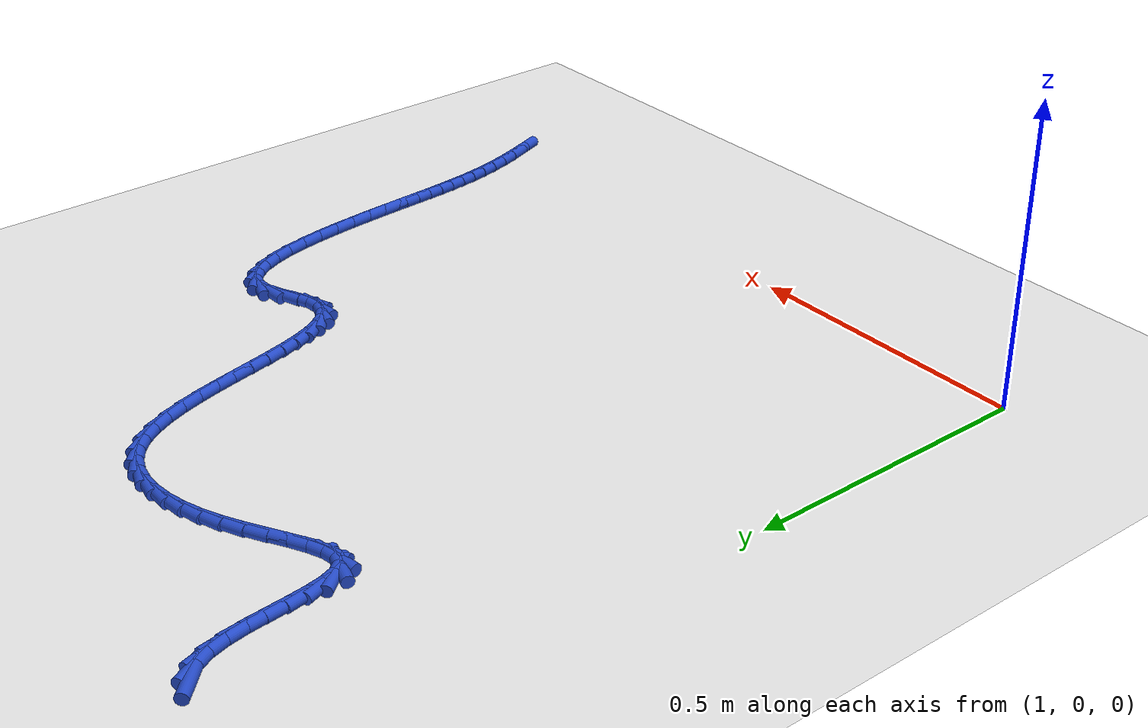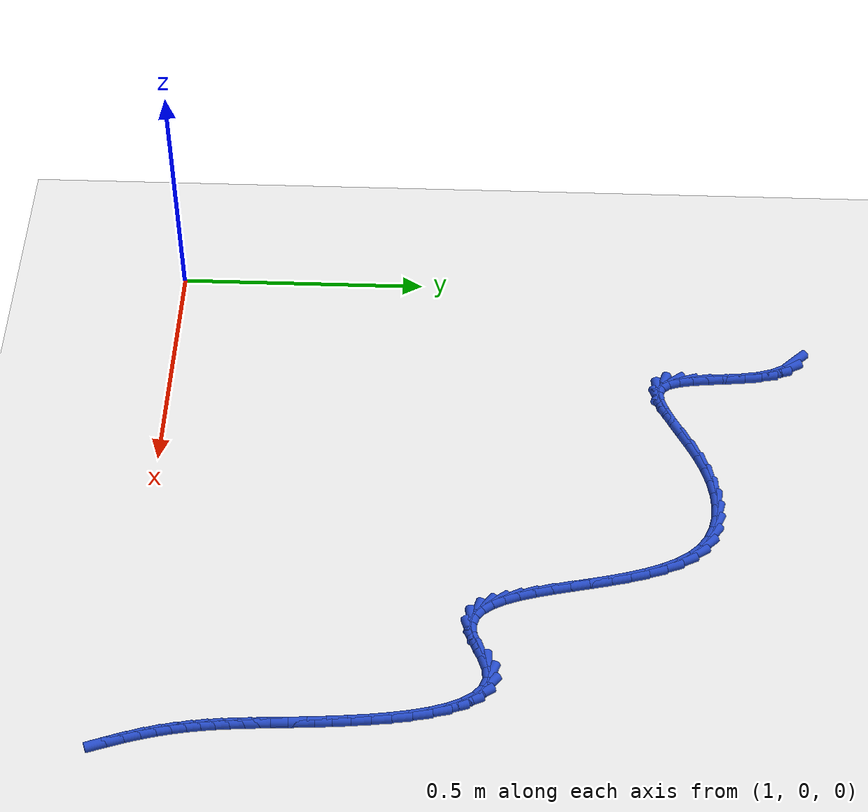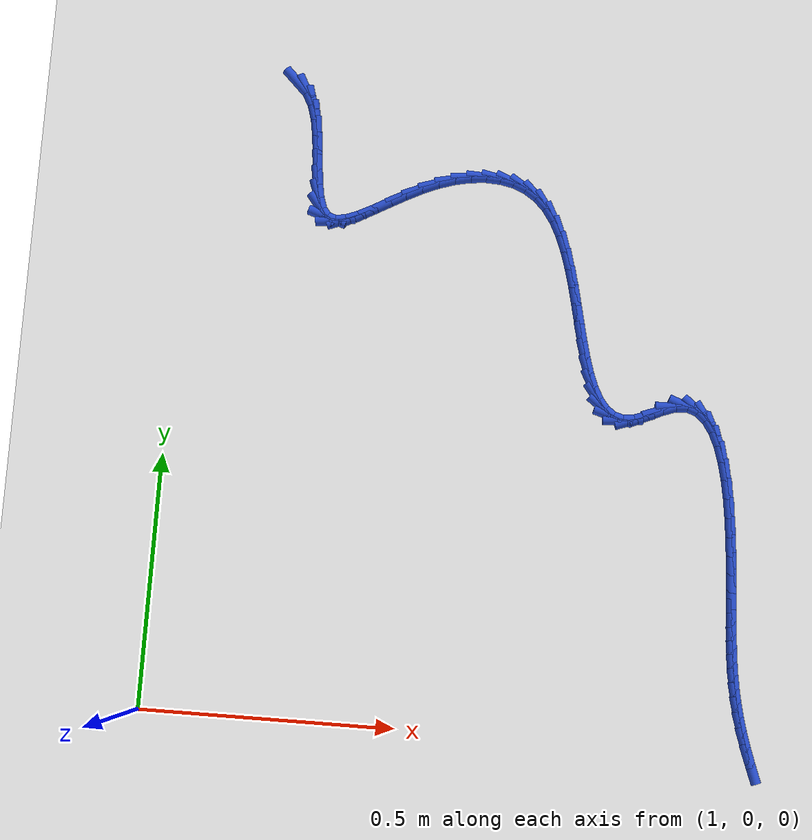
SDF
<sdf version="1.6">
 <world name="default">
  <model name="ground_plane">
   <static>1</static>
   <link name="link">
    <collision name="collision">
     <geometry><plane><normal>0 0 1</normal><size>100 100</size></plane></geometry>
     <surface><friction><ode><mu>100</mu><mu2>50</mu2></ode></friction></surface>
    </collision>
    <visual name="visual">
     <cast_shadows>0</cast_shadows>
     <geometry><plane><normal>0 0 1</normal><size>100 100</size></plane></geometry>
     <material>
      <script><uri>file://media/materials/scripts/gazebo.material</uri><name>Gazebo/WhiteGlow</name></script>
     </material>
    </visual>
   </link>
  </model>
  <model name="line">
   <link name="link_68">
    <pose>1.2058878404719158 1.265381717221211 0.01 0 1.57 -0.7793623105907405</pose>
    <collision name="collision">
     <geometry><cylinder><radius>0.01</radius><length>0.08</length></cylinder></geometry>
    </collision>
    <visual name="visual">
     <material>
      <script><name>Gazebo/Blue</name><uri>file://media/materials/scripts/gazebo.material</uri></script>
     </material>
     <geometry><cylinder><radius>0.01</radius><length>0.08</length></cylinder></geometry>
    </visual>
   </link>
   <link name="link_69">
    <pose>1.223359782249414 1.2481194286912047 0.01 0 1.57 -1.0833287653201922</pose>
    <collision name="collision">
     <geometry><cylinder><radius>0.01</radius><length>0.08</length></cylinder></geometry>
    </collision>
    <visual name="visual">
     <material>
      <script><name>Gazebo/Blue</name><uri>file://media/materials/scripts/gazebo.material</uri></script>
     </material>
     <geometry><cylinder><radius>0.01</radius><length>0.08</length></cylinder></geometry>
    </visual>
   </link>
   <link name="link_70">
    <pose>1.2360315128929988 1.2242167989494697 0.01 0 1.57 -1.2853422062372333</pose>
    <collision name="collision">
     <geometry><cylinder><radius>0.01</radius><length>0.08</length></cylinder></geometry>
    </collision>
    <visual name="visual">
     <material>
      <script><name>Gazebo/Blue</name><uri>file://media/materials/scripts/gazebo.material</uri></script>
     </material>
     <geometry><cylinder><radius>0.01</radius><length>0.08</length></cylinder></geometry>
    </visual>
   </link>
   <link name="link_71">
    <pose>1.244607285723089 1.194994701907489 0.01 0 1.57 -1.4007492171855416</pose>
    <collision name="collision">
     <geometry><cylinder><radius>0.01</radius><length>0.08</length></cylinder></geometry>
    </collision>
    <visual name="visual">
     <material>
      <script><name>Gazebo/Blue</name><uri>file://media/materials/scripts/gazebo.material</uri></script>
     </material>
     <geometry><cylinder><radius>0.01</radius><length>0.08</length></cylinder></geometry>
    </visual>
   </link>
   <link name="link_72">
    <pose>1.2502182650615765 1.162316743365079 0.01 0 1.57 -1.4610024508072048</pose>
    <collision name="collision">
     <geometry><cylinder><radius>0.01</radius><length>0.08</length></cylinder></geometry>
    </collision>
    <visual name="visual">
     <material>
      <script><name>Gazebo/Blue</name><uri>file://media/materials/scripts/gazebo.material</uri></script>
     </material>
     <geometry><cylinder><radius>0.01</radius><length>0.08</length></cylinder></geometry>
    </visual>
   </link>
   <link name="link_73">
    <pose>1.2539960555104162 1.1280470888500291 0.01 0 1.57 -1.480557919991473</pose>
    <collision name="collision">
     <geometry><cylinder><radius>0.01</radius><length>0.08</length></cylinder></geometry>
    </collision>
    <visual name="visual">
     <material>
      <script><name>Gazebo/Blue</name><uri>file://media/materials/scripts/gazebo.material</uri></script>
     </material>
     <geometry><cylinder><radius>0.01</radius><length>0.08</length></cylinder></geometry>
    </visual>
   </link>
   <link name="link_74">
    <pose>1.2570722616715635 1.0940499038901312 0.01 0 1.57 -1.4611882365544484</pose>
    <collision name="collision">
     <geometry><cylinder><radius>0.01</radius><length>0.08</length></cylinder></geometry>
    </collision>
    <visual name="visual">
     <material>
      <script><name>Gazebo/Blue</name><uri>file://media/materials/scripts/gazebo.material</uri></script>
     </material>
     <geometry><cylinder><radius>0.01</radius><length>0.08</length></cylinder></geometry>
    </visual>
   </link>
   <link name="link_75">
    <pose>1.260578488146973 1.0621893540131744 0.01 0 1.57 -1.3908579647973993</pose>
    <collision name="collision">
     <geometry><cylinder><radius>0.01</radius><length>0.08</length></cylinder></geometry>
    </collision>
    <visual name="visual">
     <material>
      <script><name>Gazebo/Blue</name><uri>file://media/materials/scripts/gazebo.material</uri></script>
     </material>
     <geometry><cylinder><radius>0.01</radius><length>0.08</length></cylinder></geometry>
    </visual>
   </link>
   <link name="link_76">
    <pose>1.2656463395386 1.0343296047469495 0.01 0 1.57 -1.2315758286325444</pose>
    <collision name="collision">
     <geometry><cylinder><radius>0.01</radius><length>0.08</length></cylinder></geometry>
    </collision>
    <visual name="visual">
     <material>
      <script><name>Gazebo/Blue</name><uri>file://media/materials/scripts/gazebo.material</uri></script>
     </material>
     <geometry><cylinder><radius>0.01</radius><length>0.08</length></cylinder></geometry>
    </visual>
   </link>
   <link name="link_77">
    <pose>1.2734074204483994 1.0123348216192463 0.01 0 1.57 -0.8886878355725425</pose>
    <collision name="collision">
     <geometry><cylinder><radius>0.01</radius><length>0.08</length></cylinder></geometry>
    </collision>
    <visual name="visual">
     <material>
      <script><name>Gazebo/Blue</name><uri>file://media/materials/scripts/gazebo.material</uri></script>
     </material>
     <geometry><cylinder><radius>0.01</radius><length>0.08</length></cylinder></geometry>
    </visual>
   </link>
   <link name="link_78">
    <pose>1.2849933354783265 0.9980691701578549 0.01 0 1.57 -0.30560761072414755</pose>
    <collision name="collision">
     <geometry><cylinder><radius>0.01</radius><length>0.08</length></cylinder></geometry>
    </collision>
    <visual name="visual">
     <material>
      <script><name>Gazebo/Blue</name><uri>file://media/materials/scripts/gazebo.material</uri></script>
     </material>
     <geometry><cylinder><radius>0.01</radius><length>0.08</length></cylinder></geometry>
    </visual>
   </link>
   <link name="link_79">
    <pose>1.3013005140783682 0.9929243990145776 0.01 0 1.57 0.14129225557697167</pose>
    <collision name="collision">
     <geometry><cylinder><radius>0.01</radius><length>0.08</length></cylinder></geometry>
    </collision>
    <visual name="visual">
     <material>
      <script><name>Gazebo/Blue</name><uri>file://media/materials/scripts/gazebo.material</uri></script>
     </material>
     <geometry><cylinder><radius>0.01</radius><length>0.08</length></cylinder></geometry>
    </visual>
   </link>
   <link name="link_80">
    <pose>1.3220203463864535 0.9958715890857948 0.01 0 1.57 0.36136505471235036</pose>
    <collision name="collision">
     <geometry><cylinder><radius>0.01</radius><length>0.08</length></cylinder></geometry>
    </collision>
    <visual name="visual">
     <material>
      <script><name>Gazebo/Blue</name><uri>file://media/materials/scripts/gazebo.material</uri></script>
     </material>
     <geometry><cylinder><radius>0.01</radius><length>0.08</length></cylinder></geometry>
    </visual>
   </link>
   <link name="link_81">
    <pose>1.3464592961907156 1.005108586076436 0.01 0 1.57 0.4634183077408714</pose>
    <collision name="collision">
     <geometry><cylinder><radius>0.01</radius><length>0.08</length></cylinder></geometry>
    </collision>
    <visual name="visual">
     <material>
      <script><name>Gazebo/Blue</name><uri>file://media/materials/scripts/gazebo.material</uri></script>
     </material>
     <geometry><cylinder><radius>0.01</radius><length>0.08</length></cylinder></geometry>
    </visual>
   </link>
   <link name="link_82">
    <pose>1.3739236581471606 1.0188328959409487 0.01 0 1.57 0.5033916465951123</pose>
    <collision name="collision">
     <geometry><cylinder><radius>0.01</radius><length>0.08</length></cylinder></geometry>
    </collision>
    <visual name="visual">
     <material>
      <script><name>Gazebo/Blue</name><uri>file://media/materials/scripts/gazebo.material</uri></script>
     </material>
     <geometry><cylinder><radius>0.01</radius><length>0.08</length></cylinder></geometry>
    </visual>
   </link>
   <link name="link_83">
    <pose>1.4037197269117927 1.0352420246337795 0.01 0 1.57 0.5029095167413982</pose>
    <collision name="collision">
     <geometry><cylinder><radius>0.01</radius><length>0.08</length></cylinder></geometry>
    </collision>
    <visual name="visual">
     <material>
      <script><name>Gazebo/Blue</name><uri>file://media/materials/scripts/gazebo.material</uri></script>
     </material>
     <geometry><cylinder><radius>0.01</radius><length>0.08</length></cylinder></geometry>
    </visual>
   </link>
   <link name="link_84">
    <pose>1.4351537971406174 1.0525334781093758 0.01 0 1.57 0.46813680575286054</pose>
    <collision name="collision">
     <geometry><cylinder><radius>0.01</radius><length>0.08</length></cylinder></geometry>
    </collision>
    <visual name="visual">
     <material>
      <script><name>Gazebo/Blue</name><uri>file://media/materials/scripts/gazebo.material</uri></script>
     </material>
     <geometry><cylinder><radius>0.01</radius><length>0.08</length></cylinder></geometry>
    </visual>
   </link>
   <link name="link_85">
    <pose>1.4675321634896403 1.0689047623221846 0.01 0 1.57 0.398167540373632</pose>
    <collision name="collision">
     <geometry><cylinder><radius>0.01</radius><length>0.08</length></cylinder></geometry>
    </collision>
    <visual name="visual">
     <material>
      <script><name>Gazebo/Blue</name><uri>file://media/materials/scripts/gazebo.material</uri></script>
     </material>
     <geometry><cylinder><radius>0.01</radius><length>0.08</length></cylinder></geometry>
    </visual>
   </link>
   <link name="link_86">
    <pose>1.5001773641621403 1.082636472037022 0.01 0 1.57 0.3073950592527104</pose>
    <collision name="collision">
     <geometry><cylinder><radius>0.01</radius><length>0.08</length></cylinder></geometry>
    </collision>
    <visual name="visual">
     <material>
      <script><name>Gazebo/Blue</name><uri>file://media/materials/scripts/gazebo.material</uri></script>
     </material>
     <geometry><cylinder><radius>0.01</radius><length>0.08</length></cylinder></geometry>
    </visual>
   </link>
   <link name="link_87">
    <pose>1.532591268422351 1.0929265142453009 0.01 0 1.57 0.20514461919029017</pose>
    <collision name="collision">
     <geometry><cylinder><radius>0.01</radius><length>0.08</length></cylinder></geometry>
    </collision>
    <visual name="visual">
     <material>
      <script><name>Gazebo/Blue</name><uri>file://media/materials/scripts/gazebo.material</uri></script>
     </material>
     <geometry><cylinder><radius>0.01</radius><length>0.08</length></cylinder></geometry>
    </visual>
   </link>
   <link name="link_88">
    <pose>1.564387086081446 1.0995423238522244 0.01 0 1.57 0.08802529563588592</pose>
    <collision name="collision">
     <geometry><cylinder><radius>0.01</radius><length>0.08</length></cylinder></geometry>
    </collision>
    <visual name="visual">
     <material>
      <script><name>Gazebo/Blue</name><uri>file://media/materials/scripts/gazebo.material</uri></script>
     </material>
     <geometry><cylinder><radius>0.01</radius><length>0.08</length></cylinder></geometry>
    </visual>
   </link>
   <link name="link_89">
    <pose>1.5951796963471783 1.1022598750415962 0.01 0 1.57 -0.04773678347120187</pose>
    <collision name="collision">
     <geometry><cylinder><radius>0.01</radius><length>0.08</length></cylinder></geometry>
    </collision>
    <visual name="visual">
     <material>
      <script><name>Gazebo/Blue</name><uri>file://media/materials/scripts/gazebo.material</uri></script>
     </material>
     <geometry><cylinder><radius>0.01</radius><length>0.08</length></cylinder></geometry>
    </visual>
   </link>
   <link name="link_90">
    <pose>1.6245839784272986 1.1008551419972192 0.01 0 1.57 -0.20520875508072675</pose>
    <collision name="collision">
     <geometry><cylinder><radius>0.01</radius><length>0.08</length></cylinder></geometry>
    </collision>
    <visual name="visual">
     <material>
      <script><name>Gazebo/Blue</name><uri>file://media/materials/scripts/gazebo.material</uri></script>
     </material>
     <geometry><cylinder><radius>0.01</radius><length>0.08</length></cylinder></geometry>
    </visual>
   </link>
   <link name="link_91">
    <pose>1.6522148115295578 1.0951040989028966 0.01 0 1.57 -0.3849816844161137</pose>
    <collision name="collision">
     <geometry><cylinder><radius>0.01</radius><length>0.08</length></cylinder></geometry>
    </collision>
    <visual name="visual">
     <material>
      <script><name>Gazebo/Blue</name><uri>file://media/materials/scripts/gazebo.material</uri></script>
     </material>
     <geometry><cylinder><radius>0.01</radius><length>0.08</length></cylinder></geometry>
    </visual>
   </link>
   <link name="link_92">
    <pose>1.6776870748617079 1.084782719942433 0.01 0 1.57 -0.5828528002260427</pose>
    <collision name="collision">
     <geometry><cylinder><radius>0.01</radius><length>0.08</length></cylinder></geometry>
    </collision>
    <visual name="visual">
     <material>
      <script><name>Gazebo/Blue</name><uri>file://media/materials/scripts/gazebo.material</uri></script>
     </material>
     <geometry><cylinder><radius>0.01</radius><length>0.08</length></cylinder></geometry>
    </visual>
   </link>
   <link name="link_93">
    <pose>1.7006156476315 1.06966697929963 0.01 0 1.57 -0.7878535014354022</pose>
    <collision name="collision">
     <geometry><cylinder><radius>0.01</radius><length>0.08</length></cylinder></geometry>
    </collision>
    <visual name="visual">
     <material>
      <script><name>Gazebo/Blue</name><uri>file://media/materials/scripts/gazebo.material</uri></script>
     </material>
     <geometry><cylinder><radius>0.01</radius><length>0.08</length></cylinder></geometry>
    </visual>
   </link>
   <link name="link_94">
    <pose>1.7206309627832832 1.049553133294022 0.01 0 1.57 -0.9673750986025735</pose>
    <collision name="collision">
     <geometry><cylinder><radius>0.01</radius><length>0.08</length></cylinder></geometry>
    </collision>
    <visual name="visual">
     <material>
      <script><name>Gazebo/Blue</name><uri>file://media/materials/scripts/gazebo.material</uri></script>
     </material>
     <geometry><cylinder><radius>0.01</radius><length>0.08</length></cylinder></geometry>
    </visual>
   </link>
   <link name="link_95">
    <pose>1.7377396908316418 1.0247280535656307 0.01 0 1.57 -1.1009587792342939</pose>
    <collision name="collision">
     <geometry><cylinder><radius>0.01</radius><length>0.08</length></cylinder></geometry>
    </collision>
    <visual name="visual">
     <material>
      <script><name>Gazebo/Blue</name><uri>file://media/materials/scripts/gazebo.material</uri></script>
     </material>
     <geometry><cylinder><radius>0.01</radius><length>0.08</length></cylinder></geometry>
    </visual>
   </link>
   <link name="link_96">
    <pose>1.7523353149593413 0.995983017045672 0.01 0 1.57 -1.1969821155979956</pose>
    <collision name="collision">
     <geometry><cylinder><radius>0.01</radius><length>0.08</length></cylinder></geometry>
    </collision>
    <visual name="visual">
     <material>
      <script><name>Gazebo/Blue</name><uri>file://media/materials/scripts/gazebo.material</uri></script>
     </material>
     <geometry><cylinder><radius>0.01</radius><length>0.08</length></cylinder></geometry>
    </visual>
   </link>
   <link name="link_97">
    <pose>1.7648289876148062 0.9641323414595794 0.01 0 1.57 -1.2643531823271805</pose>
    <collision name="collision">
     <geometry><cylinder><radius>0.01</radius><length>0.08</length></cylinder></geometry>
    </collision>
    <visual name="visual">
     <material>
      <script><name>Gazebo/Blue</name><uri>file://media/materials/scripts/gazebo.material</uri></script>
     </material>
     <geometry><cylinder><radius>0.01</radius><length>0.08</length></cylinder></geometry>
    </visual>
   </link>
   <link name="link_98">
    <pose>1.7756318612464603 0.9299903445327861 0.01 0 1.57 -1.3095433096258688</pose>
    <collision name="collision">
     <geometry><cylinder><radius>0.01</radius><length>0.08</length></cylinder></geometry>
    </collision>
    <visual name="visual">
     <material>
      <script><name>Gazebo/Blue</name><uri>file://media/materials/scripts/gazebo.material</uri></script>
     </material>
     <geometry><cylinder><radius>0.01</radius><length>0.08</length></cylinder></geometry>
    </visual>
   </link>
   <link name="link_99">
    <pose>1.785155088302726 0.8943713439907248 0.01 0 1.57 -1.3366296934176665</pose>
    <collision name="collision">
     <geometry><cylinder><radius>0.01</radius><length>0.08</length></cylinder></geometry>
    </collision>
    <visual name="visual">
     <material>
      <script><name>Gazebo/Blue</name><uri>file://media/materials/scripts/gazebo.material</uri></script>
     </material>
     <geometry><cylinder><radius>0.01</radius><length>0.08</length></cylinder></geometry>
    </visual>
   </link>
   <link name="link_100">
    <pose>1.7938098212320281 0.8580896575588289 0.01 0 1.57 -1.347687813384203</pose>
    <collision name="collision">
     <geometry><cylinder><radius>0.01</radius><length>0.08</length></cylinder></geometry>
    </collision>
    <visual name="visual">
     <material>
      <script><name>Gazebo/Blue</name><uri>file://media/materials/scripts/gazebo.material</uri></script>
     </material>
     <geometry><cylinder><radius>0.01</radius><length>0.08</length></cylinder></geometry>
    </visual>
   </link>
   <link name="link_101">
    <pose>1.8020072124827902 0.8219596029625328 0.01 0 1.57 -1.3430146635109652</pose>
    <collision name="collision">
     <geometry><cylinder><radius>0.01</radius><length>0.08</length></cylinder></geometry>
    </collision>
    <visual name="visual">
     <material>
      <script><name>Gazebo/Blue</name><uri>file://media/materials/scripts/gazebo.material</uri></script>
     </material>
     <geometry><cylinder><radius>0.01</radius><length>0.08</length></cylinder></geometry>
    </visual>
   </link>
   <link name="link_102">
    <pose>1.8101584145034353 0.7867954979272693 0.01 0 1.57 -1.321024909517263</pose>
    <collision name="collision">
     <geometry><cylinder><radius>0.01</radius><length>0.08</length></cylinder></geometry>
    </collision>
    <visual name="visual">
     <material>
      <script><name>Gazebo/Blue</name><uri>file://media/materials/scripts/gazebo.material</uri></script>
     </material>
     <geometry><cylinder><radius>0.01</radius><length>0.08</length></cylinder></geometry>
    </visual>
   </link>
   <link name="link_103">
    <pose>1.8186745797423873 0.7534116601784715 0.01 0 1.57 -1.2776864621147028</pose>
    <collision name="collision">
     <geometry><cylinder><radius>0.01</radius><length>0.08</length></cylinder></geometry>
    </collision>
    <visual name="visual">
     <material>
      <script><name>Gazebo/Blue</name><uri>file://media/materials/scripts/gazebo.material</uri></script>
     </material>
     <geometry><cylinder><radius>0.01</radius><length>0.08</length></cylinder></geometry>
    </visual>
   </link>
   <link name="link_104">
    <pose>1.82796686064807 0.7226224074415724 0.01 0 1.57 -1.2052574255813164</pose>
    <collision name="collision">
     <geometry><cylinder><radius>0.01</radius><length>0.08</length></cylinder></geometry>
    </collision>
    <visual name="visual">
     <material>
      <script><name>Gazebo/Blue</name><uri>file://media/materials/scripts/gazebo.material</uri></script>
     </material>
     <geometry><cylinder><radius>0.01</radius><length>0.08</length></cylinder></geometry>
    </visual>
   </link>
   <link name="link_105">
    <pose>1.8384464096689066 0.6952420574420062 0.01 0 1.57 -1.0900452048934428</pose>
    <collision name="collision">
     <geometry><cylinder><radius>0.01</radius><length>0.08</length></cylinder></geometry>
    </collision>
    <visual name="visual">
     <material>
      <script><name>Gazebo/Blue</name><uri>file://media/materials/scripts/gazebo.material</uri></script>
     </material>
     <geometry><cylinder><radius>0.01</radius><length>0.08</length></cylinder></geometry>
    </visual>
   </link>
   <link name="link_106">
    <pose>1.8505243792533206 0.6720849279052059 0.01 0 1.57 -0.9099413815578856</pose>
    <collision name="collision">
     <geometry><cylinder><radius>0.01</radius><length>0.08</length></cylinder></geometry>
    </collision>
    <visual name="visual">
     <material>
      <script><name>Gazebo/Blue</name><uri>file://media/materials/scripts/gazebo.material</uri></script>
     </material>
     <geometry><cylinder><radius>0.01</radius><length>0.08</length></cylinder></geometry>
    </visual>
   </link>
   <link name="link_107">
    <pose>1.8646119218497363 0.6539653365566047 0.01 0 1.57 -0.6390876907826127</pose>
    <collision name="collision">
     <geometry><cylinder><radius>0.01</radius><length>0.08</length></cylinder></geometry>
    </collision>
    <visual name="visual">
     <material>
      <script><name>Gazebo/Blue</name><uri>file://media/materials/scripts/gazebo.material</uri></script>
     </material>
     <geometry><cylinder><radius>0.01</radius><length>0.08</length></cylinder></geometry>
    </visual>
   </link>
   <link name="link_108">
    <pose>1.8811201899065764 0.641697601121636 0.01 0 1.57 -0.28191968435455445</pose>
    <collision name="collision">
     <geometry><cylinder><radius>0.01</radius><length>0.08</length></cylinder></geometry>
    </collision>
    <visual name="visual">
     <material>
      <script><name>Gazebo/Blue</name><uri>file://media/materials/scripts/gazebo.material</uri></script>
     </material>
     <geometry><cylinder><radius>0.01</radius><length>0.08</length></cylinder></geometry>
    </visual>
   </link>
   <link name="link_109">
    <pose>1.9004603358722654 0.636096039325733 0.01 0 1.57 0.08300922555006189</pose>
    <collision name="collision">
     <geometry><cylinder><radius>0.01</radius><length>0.08</length></cylinder></geometry>
    </collision>
    <visual name="visual">
     <material>
      <script><name>Gazebo/Blue</name><uri>file://media/materials/scripts/gazebo.material</uri></script>
     </material>
     <geometry><cylinder><radius>0.01</radius><length>0.08</length></cylinder></geometry>
    </visual>
   </link>
   <link name="link_110">
    <pose>1.9230435121952265 0.6379749688943293 0.01 0 1.57 0.34538751175004456</pose>
    <collision name="collision">
     <geometry><cylinder><radius>0.01</radius><length>0.08</length></cylinder></geometry>
    </collision>
    <visual name="visual">
     <material>
      <script><name>Gazebo/Blue</name><uri>file://media/materials/scripts/gazebo.material</uri></script>
     </material>
     <geometry><cylinder><radius>0.01</radius><length>0.08</length></cylinder></geometry>
    </visual>
   </link>
   <link name="link_111">
    <pose>1.9489285237987475 0.6472886590851222 0.01 0 1.57 0.4217415998544016</pose>
    <collision name="collision">
     <geometry><cylinder><radius>0.01</radius><length>0.08</length></cylinder></geometry>
    </collision>
    <visual name="visual">
     <material>
      <script><name>Gazebo/Blue</name><uri>file://media/materials/scripts/gazebo.material</uri></script>
     </material>
     <geometry><cylinder><radius>0.01</radius><length>0.08</length></cylinder></geometry>
    </visual>
   </link>
   <link name="link_112">
    <pose>1.9763765690776411 0.6596035840668282 0.01 0 1.57 0.34139713705093083</pose>
    <collision name="collision">
     <geometry><cylinder><radius>0.01</radius><length>0.08</length></cylinder></geometry>
    </collision>
    <visual name="visual">
     <material>
      <script><name>Gazebo/Blue</name><uri>file://media/materials/scripts/gazebo.material</uri></script>
     </material>
     <geometry><cylinder><radius>0.01</radius><length>0.08</length></cylinder></geometry>
    </visual>
   </link>
   <link name="link_113">
    <pose>2.003077053409037 0.6690905229240821 0.01 0 1.57 0.060781827076299075</pose>
    <collision name="collision">
     <geometry><cylinder><radius>0.01</radius><length>0.08</length></cylinder></geometry>
    </collision>
    <visual name="visual">
     <material>
      <script><name>Gazebo/Blue</name><uri>file://media/materials/scripts/gazebo.material</uri></script>
     </material>
     <geometry><cylinder><radius>0.01</radius><length>0.08</length></cylinder></geometry>
    </visual>
   </link>
   <link name="link_114">
    <pose>2.0269500474400437 0.6705433566910061 0.01 0 1.57 -0.34345373444588034</pose>
    <collision name="collision">
     <geometry><cylinder><radius>0.01</radius><length>0.08</length></cylinder></geometry>
    </collision>
    <visual name="visual">
     <material>
      <script><name>Gazebo/Blue</name><uri>file://media/materials/scripts/gazebo.material</uri></script>
     </material>
     <geometry><cylinder><radius>0.01</radius><length>0.08</length></cylinder></geometry>
    </visual>
   </link>
   <link name="link_115">
    <pose>2.04755187452319 0.6631755758227237 0.01 0 1.57 -0.7081540608441165</pose>
    <collision name="collision">
     <geometry><cylinder><radius>0.01</radius><length>0.08</length></cylinder></geometry>
    </collision>
    <visual name="visual">
     <material>
      <script><name>Gazebo/Blue</name><uri>file://media/materials/scripts/gazebo.material</uri></script>
     </material>
     <geometry><cylinder><radius>0.01</radius><length>0.08</length></cylinder></geometry>
    </visual>
   </link>
   <link name="link_116">
    <pose>2.0651456071672802 0.6481096394923338 0.01 0 1.57 -0.9691969608009362</pose>
    <collision name="collision">
     <geometry><cylinder><radius>0.01</radius><length>0.08</length></cylinder></geometry>
    </collision>
    <visual name="visual">
     <material>
      <script><name>Gazebo/Blue</name><uri>file://media/materials/scripts/gazebo.material</uri></script>
     </material>
     <geometry><cylinder><radius>0.01</radius><length>0.08</length></cylinder></geometry>
    </visual>
   </link>
   <link name="link_117">
    <pose>2.0799971192134334 0.6264755734270814 0.01 0 1.57 -1.1420391945402486</pose>
    <collision name="collision">
     <geometry><cylinder><radius>0.01</radius><length>0.08</length></cylinder></geometry>
    </collision>
    <visual name="visual">
     <material>
      <script><name>Gazebo/Blue</name><uri>file://media/materials/scripts/gazebo.material</uri></script>
     </material>
     <geometry><cylinder><radius>0.01</radius><length>0.08</length></cylinder></geometry>
    </visual>
   </link>
   <link name="link_118">
    <pose>2.092372284502767 0.5994034033542109 0.01 0 1.57 -1.2575414935569373</pose>
    <collision name="collision">
     <geometry><cylinder><radius>0.01</radius><length>0.08</length></cylinder></geometry>
    </collision>
    <visual name="visual">
     <material>
      <script><name>Gazebo/Blue</name><uri>file://media/materials/scripts/gazebo.material</uri></script>
     </material>
     <geometry><cylinder><radius>0.01</radius><length>0.08</length></cylinder></geometry>
    </visual>
   </link>
   <link name="link_119">
    <pose>2.102536976876399 0.5680231550009675 0.01 0 1.57 -1.3372742463028175</pose>
    <collision name="collision">
     <geometry><cylinder><radius>0.01</radius><length>0.08</length></cylinder></geometry>
    </collision>
    <visual name="visual">
     <material>
      <script><name>Gazebo/Blue</name><uri>file://media/materials/scripts/gazebo.material</uri></script>
     </material>
     <geometry><cylinder><radius>0.01</radius><length>0.08</length></cylinder></geometry>
    </visual>
   </link>
   <link name="link_120">
    <pose>2.1107570701754494 0.5334648540945959 0.01 0 1.57 -1.3939677117301523</pose>
    <collision name="collision">
     <geometry><cylinder><radius>0.01</radius><length>0.08</length></cylinder></geometry>
    </collision>
    <visual name="visual">
     <material>
      <script><name>Gazebo/Blue</name><uri>file://media/materials/scripts/gazebo.material</uri></script>
     </material>
     <geometry><cylinder><radius>0.01</radius><length>0.08</length></cylinder></geometry>
    </visual>
   </link>
   <link name="link_121">
    <pose>2.117298438241037 0.49685852636234074 0.01 0 1.57 -1.4349661107002447</pose>
    <collision name="collision">
     <geometry><cylinder><radius>0.01</radius><length>0.08</length></cylinder></geometry>
    </collision>
    <visual name="visual">
     <material>
      <script><name>Gazebo/Blue</name><uri>file://media/materials/scripts/gazebo.material</uri></script>
     </material>
     <geometry><cylinder><radius>0.01</radius><length>0.08</length></cylinder></geometry>
    </visual>
   </link>
   <link name="link_122">
    <pose>2.122426954914279 0.4593341975314458 0.01 0 1.57 -1.4644901249782627</pose>
    <collision name="collision">
     <geometry><cylinder><radius>0.01</radius><length>0.08</length></cylinder></geometry>
    </collision>
    <visual name="visual">
     <material>
      <script><name>Gazebo/Blue</name><uri>file://media/materials/scripts/gazebo.material</uri></script>
     </material>
     <geometry><cylinder><radius>0.01</radius><length>0.08</length></cylinder></geometry>
    </visual>
   </link>
   <link name="link_123">
    <pose>2.126408494036295 0.4220218933291576 0.01 0 1.57 -1.4848159381379136</pose>
    <collision name="collision">
     <geometry><cylinder><radius>0.01</radius><length>0.08</length></cylinder></geometry>
    </collision>
    <visual name="visual">
     <material>
      <script><name>Gazebo/Blue</name><uri>file://media/materials/scripts/gazebo.material</uri></script>
     </material>
     <geometry><cylinder><radius>0.01</radius><length>0.08</length></cylinder></geometry>
    </visual>
   </link>
   <link name="link_124">
    <pose>2.1295089069097415 0.3860512599299495 0.01 0 1.57 -1.498041266179266</pose>
    <collision name="collision">
     <geometry><cylinder><radius>0.01</radius><length>0.08</length></cylinder></geometry>
    </collision>
    <visual name="visual">
     <material>
      <script><name>Gazebo/Blue</name><uri>file://media/materials/scripts/gazebo.material</uri></script>
     </material>
     <geometry><cylinder><radius>0.01</radius><length>0.08</length></cylinder></geometry>
    </visual>
   </link>
   <link name="link_125">
    <pose>2.1319744775921428 0.3522224266985884 0.01 0 1.57 -1.507344989859211</pose>
    <collision name="collision">
     <geometry><cylinder><radius>0.01</radius><length>0.08</length></cylinder></geometry>
    </collision>
    <visual name="visual">
     <material>
      <script><name>Gazebo/Blue</name><uri>file://media/materials/scripts/gazebo.material</uri></script>
     </material>
     <geometry><cylinder><radius>0.01</radius><length>0.08</length></cylinder></geometry>
    </visual>
   </link>
   <link name="link_126">
    <pose>2.133996144994641 0.32040349828471004 0.01 0 1.57 -1.512433424012826</pose>
    <collision name="collision">
     <geometry><cylinder><radius>0.01</radius><length>0.08</length></cylinder></geometry>
    </collision>
    <visual name="visual">
     <material>
      <script><name>Gazebo/Blue</name><uri>file://media/materials/scripts/gazebo.material</uri></script>
     </material>
     <geometry><cylinder><radius>0.01</radius><length>0.08</length></cylinder></geometry>
    </visual>
   </link>
   <link name="link_127">
    <pose>2.1357551314473 0.2902989499268482 0.01 0 1.57 -1.512383255229708</pose>
    <collision name="collision">
     <geometry><cylinder><radius>0.01</radius><length>0.08</length></cylinder></geometry>
    </collision>
    <visual name="visual">
     <material>
      <script><name>Gazebo/Blue</name><uri>file://media/materials/scripts/gazebo.material</uri></script>
     </material>
     <geometry><cylinder><radius>0.01</radius><length>0.08</length></cylinder></geometry>
    </visual>
   </link>
   <link name="link_128">
    <pose>2.1374326592801838 0.2616132568635352 0.01 0 1.57 -1.5064029228347606</pose>
    <collision name="collision">
     <geometry><cylinder><radius>0.01</radius><length>0.08</length></cylinder></geometry>
    </collision>
    <visual name="visual">
     <material>
      <script><name>Gazebo/Blue</name><uri>file://media/materials/scripts/gazebo.material</uri></script>
     </material>
     <geometry><cylinder><radius>0.01</radius><length>0.08</length></cylinder></geometry>
    </visual>
   </link>
   <link name="link_129">
    <pose>2.1392099508233553 0.23405089433330367 0.01 0 1.57 -1.4939584992218204</pose>
    <collision name="collision">
     <geometry><cylinder><radius>0.01</radius><length>0.08</length></cylinder></geometry>
    </collision>
    <visual name="visual">
     <material>
      <script><name>Gazebo/Blue</name><uri>file://media/materials/scripts/gazebo.material</uri></script>
     </material>
     <geometry><cylinder><radius>0.01</radius><length>0.08</length></cylinder></geometry>
    </visual>
   </link>
   <link name="link_130">
    <pose>2.1412682284068802 0.20731633757468648 0.01 0 1.57 -1.4748979897724135</pose>
    <collision name="collision">
     <geometry><cylinder><radius>0.01</radius><length>0.08</length></cylinder></geometry>
    </collision>
    <visual name="visual">
     <material>
      <script><name>Gazebo/Blue</name><uri>file://media/materials/scripts/gazebo.material</uri></script>
     </material>
     <geometry><cylinder><radius>0.01</radius><length>0.08</length></cylinder></geometry>
    </visual>
   </link>
   <link name="link_131">
    <pose>2.1437887143608214 0.18111406182621598 0.01 0 1.57 -1.4495433766541512</pose>
    <collision name="collision">
     <geometry><cylinder><radius>0.01</radius><length>0.08</length></cylinder></geometry>
    </collision>
    <visual name="visual">
     <material>
      <script><name>Gazebo/Blue</name><uri>file://media/materials/scripts/gazebo.material</uri></script>
     </material>
     <geometry><cylinder><radius>0.01</radius><length>0.08</length></cylinder></geometry>
    </visual>
   </link>
   <link name="link_132">
    <pose>2.146952631015244 0.15514854232642594 0.01 0 1.57 -1.418716372211975</pose>
    <collision name="collision">
     <geometry><cylinder><radius>0.01</radius><length>0.08</length></cylinder></geometry>
    </collision>
    <visual name="visual">
     <material>
      <script><name>Gazebo/Blue</name><uri>file://media/materials/scripts/gazebo.material</uri></script>
     </material>
     <geometry><cylinder><radius>0.01</radius><length>0.08</length></cylinder></geometry>
    </visual>
   </link>
   <link name="link_133">
    <pose>2.15094120070021 0.1291242543138485 0.01 0 1.57 -1.3836742258580776</pose>
    <collision name="collision">
     <geometry><cylinder><radius>0.01</radius><length>0.08</length></cylinder></geometry>
    </collision>
    <visual name="visual">
     <material>
      <script><name>Gazebo/Blue</name><uri>file://media/materials/scripts/gazebo.material</uri></script>
     </material>
     <geometry><cylinder><radius>0.01</radius><length>0.08</length></cylinder></geometry>
    </visual>
   </link>
   <link name="link_134">
    <pose>2.1559356457457857 0.1027456730270166 0.01 0 1.57 -1.3459577771390443</pose>
    <collision name="collision">
     <geometry><cylinder><radius>0.01</radius><length>0.08</length></cylinder></geometry>
    </collision>
    <visual name="visual">
     <material>
      <script><name>Gazebo/Blue</name><uri>file://media/materials/scripts/gazebo.material</uri></script>
     </material>
     <geometry><cylinder><radius>0.01</radius><length>0.08</length></cylinder></geometry>
    </visual>
   </link>
   <link name="link_135">
    <pose>2.162117188482034 0.07571727370446255 0.01 0 1.57 -1.307186038198005</pose>
    <collision name="collision">
     <geometry><cylinder><radius>0.01</radius><length>0.08</length></cylinder></geometry>
    </collision>
    <visual name="visual">
     <material>
      <script><name>Gazebo/Blue</name><uri>file://media/materials/scripts/gazebo.material</uri></script>
     </material>
     <geometry><cylinder><radius>0.01</radius><length>0.08</length></cylinder></geometry>
    </visual>
   </link>
   <link name="link_136">
    <pose>2.169667051239019 0.04774353158471995 0.01 0 1.57 -1.2689374822077353</pose>
    <collision name="collision">
     <geometry><cylinder><radius>0.01</radius><length>0.08</length></cylinder></geometry>
    </collision>
    <visual name="visual">
     <material>
      <script><name>Gazebo/Blue</name><uri>file://media/materials/scripts/gazebo.material</uri></script>
     </material>
     <geometry><cylinder><radius>0.01</radius><length>0.08</length></cylinder></geometry>
    </visual>
   </link>
   <link name="link_137">
    <pose>2.178762482678002 0.01853291228520275 0.01 0 1.57 -1.2363793804222676</pose>
    <collision name="collision">
     <geometry><cylinder><radius>0.01</radius><length>0.08</length></cylinder></geometry>
    </collision>
    <visual name="visual">
     <material>
      <script><name>Gazebo/Blue</name><uri>file://media/materials/scripts/gazebo.material</uri></script>
     </material>
     <geometry><cylinder><radius>0.01</radius><length>0.08</length></cylinder></geometry>
    </visual>
   </link>
   <link name="link_138">
    <pose>2.1893696431878853 -0.011994142635588846 0.01 0 1.57 -1.2142694809204777</pose>
    <collision name="collision">
     <geometry><cylinder><radius>0.01</radius><length>0.08</length></cylinder></geometry>
    </collision>
    <visual name="visual">
     <material>
      <script><name>Gazebo/Blue</name><uri>file://media/materials/scripts/gazebo.material</uri></script>
     </material>
     <geometry><cylinder><radius>0.01</radius><length>0.08</length></cylinder></geometry>
    </visual>
   </link>
  </model>
 </world>
</sdf>
